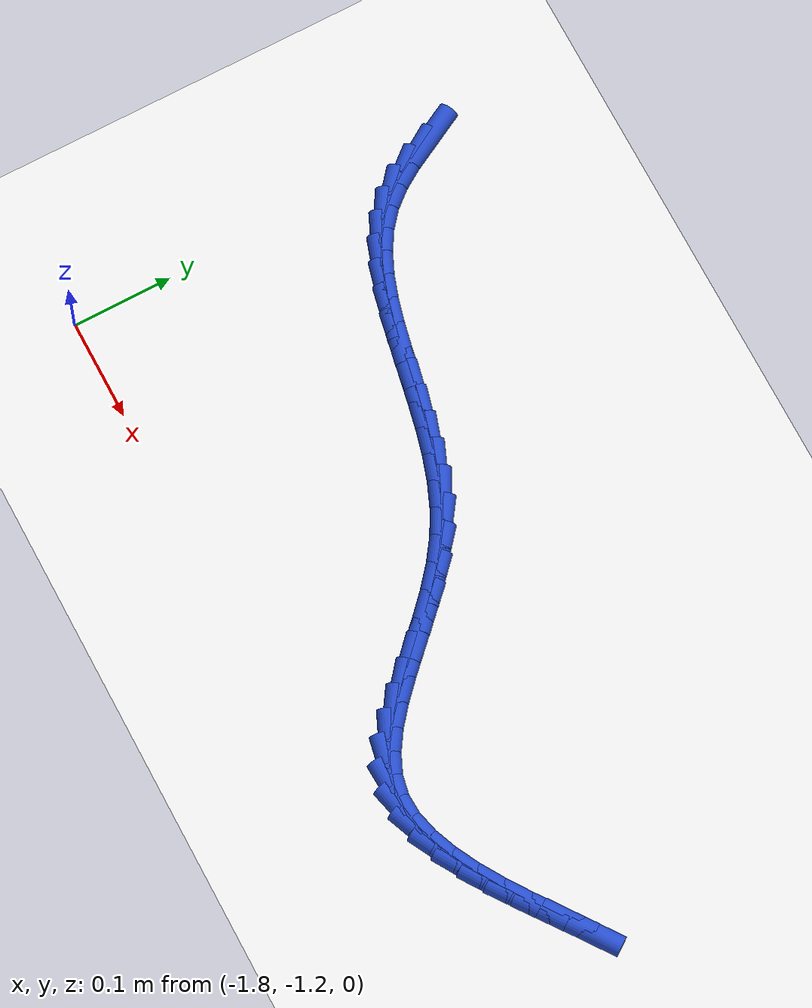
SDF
<sdf version="1.6">
 <world name="default">
  <model name="ground_plane">
   <static>1</static>
   <link name="link">
    <collision name="collision">
     <geometry><plane><normal>0 0 1</normal><size>100 100</size></plane></geometry>
     <surface><friction><ode><mu>100</mu><mu2>50</mu2></ode></friction></surface>
    </collision>
    <visual name="visual">
     <cast_shadows>0</cast_shadows>
     <geometry><plane><normal>0 0 1</normal><size>100 100</size></plane></geometry>
     <material>
      <script><uri>file://media/materials/scripts/gazebo.material</uri><name>Gazebo/WhiteGlow</name></script>
     </material>
    </visual>
   </link>
  </model>
  <model name="line">
   <link name="link_174">
    <pose>-1.8045953094285936 -0.8269042348939845 0.01 0 1.57 -1.0811596735291378</pose>
    <collision name="collision">
     <geometry><cylinder><radius>0.01</radius><length>0.08</length></cylinder></geometry>
    </collision>
    <visual name="visual">
     <material>
      <script><name>Gazebo/Blue</name><uri>file://media/materials/scripts/gazebo.material</uri></script>
     </material>
     <geometry><cylinder><radius>0.01</radius><length>0.08</length></cylinder></geometry>
    </visual>
   </link>
   <link name="link_175">
    <pose>-1.7926468094170425 -0.8493249847190096 0.01 0 1.57 -0.9981048424706145</pose>
    <collision name="collision">
     <geometry><cylinder><radius>0.01</radius><length>0.08</length></cylinder></geometry>
    </collision>
    <visual name="visual">
     <material>
      <script><name>Gazebo/Blue</name><uri>file://media/materials/scripts/gazebo.material</uri></script>
     </material>
     <geometry><cylinder><radius>0.01</radius><length>0.08</length></cylinder></geometry>
    </visual>
   </link>
   <link name="link_176">
    <pose>-1.7793731867060312 -0.8699115097469342 0.01 0 1.57 -0.8629069760477935</pose>
    <collision name="collision">
     <geometry><cylinder><radius>0.01</radius><length>0.08</length></cylinder></geometry>
    </collision>
    <visual name="visual">
     <material>
      <script><name>Gazebo/Blue</name><uri>file://media/materials/scripts/gazebo.material</uri></script>
     </material>
     <geometry><cylinder><radius>0.01</radius><length>0.08</length></cylinder></geometry>
    </visual>
   </link>
   <link name="link_177">
    <pose>-1.7641263873290363 -0.887725993903983 0.01 0 1.57 -0.6944248073078879</pose>
    <collision name="collision">
     <geometry><cylinder><radius>0.01</radius><length>0.08</length></cylinder></geometry>
    </collision>
    <visual name="visual">
     <material>
      <script><name>Gazebo/Blue</name><uri>file://media/materials/scripts/gazebo.material</uri></script>
     </material>
     <geometry><cylinder><radius>0.01</radius><length>0.08</length></cylinder></geometry>
    </visual>
   </link>
   <link name="link_178">
    <pose>-1.7465883410966696 -0.9023317194316595 0.01 0 1.57 -0.5419529914897148</pose>
    <collision name="collision">
     <geometry><cylinder><radius>0.01</radius><length>0.08</length></cylinder></geometry>
    </collision>
    <visual name="visual">
     <material>
      <script><name>Gazebo/Blue</name><uri>file://media/materials/scripts/gazebo.material</uri></script>
     </material>
     <geometry><cylinder><radius>0.01</radius><length>0.08</length></cylinder></geometry>
    </visual>
   </link>
   <link name="link_179">
    <pose>-1.7269928040703453 -0.9141299467502788 0.01 0 1.57 -0.417262885952376</pose>
    <collision name="collision">
     <geometry><cylinder><radius>0.01</radius><length>0.08</length></cylinder></geometry>
    </collision>
    <visual name="visual">
     <material>
      <script><name>Gazebo/Blue</name><uri>file://media/materials/scripts/gazebo.material</uri></script>
     </material>
     <geometry><cylinder><radius>0.01</radius><length>0.08</length></cylinder></geometry>
    </visual>
   </link>
   <link name="link_180">
    <pose>-1.705626052219157 -0.9236016906168247 0.01 0 1.57 -0.3221067414059348</pose>
    <collision name="collision">
     <geometry><cylinder><radius>0.01</radius><length>0.08</length></cylinder></geometry>
    </collision>
    <visual name="visual">
     <material>
      <script><name>Gazebo/Blue</name><uri>file://media/materials/scripts/gazebo.material</uri></script>
     </material>
     <geometry><cylinder><radius>0.01</radius><length>0.08</length></cylinder></geometry>
    </visual>
   </link>
   <link name="link_181">
    <pose>-1.6827743615121953 -0.9312279657882798 0.01 0 1.57 -0.2547080053352946</pose>
    <collision name="collision">
     <geometry><cylinder><radius>0.01</radius><length>0.08</length></cylinder></geometry>
    </collision>
    <visual name="visual">
     <material>
      <script><name>Gazebo/Blue</name><uri>file://media/materials/scripts/gazebo.material</uri></script>
     </material>
     <geometry><cylinder><radius>0.01</radius><length>0.08</length></cylinder></geometry>
    </visual>
   </link>
   <link name="link_182">
    <pose>-1.6587240079185566 -0.9374897870216272 0.01 0 1.57 -0.21221234828041263</pose>
    <collision name="collision">
     <geometry><cylinder><radius>0.01</radius><length>0.08</length></cylinder></geometry>
    </collision>
    <visual name="visual">
     <material>
      <script><name>Gazebo/Blue</name><uri>file://media/materials/scripts/gazebo.material</uri></script>
     </material>
     <geometry><cylinder><radius>0.01</radius><length>0.08</length></cylinder></geometry>
    </visual>
   </link>
   <link name="link_183">
    <pose>-1.6337612674073323 -0.9428681690738505 0.01 0 1.57 -0.19206110719427397</pose>
    <collision name="collision">
     <geometry><cylinder><radius>0.01</radius><length>0.08</length></cylinder></geometry>
    </collision>
    <visual name="visual">
     <material>
      <script><name>Gazebo/Blue</name><uri>file://media/materials/scripts/gazebo.material</uri></script>
     </material>
     <geometry><cylinder><radius>0.01</radius><length>0.08</length></cylinder></geometry>
    </visual>
   </link>
   <link name="link_184">
    <pose>-1.608172415947616 -0.9478441267019327 0.01 0 1.57 -0.19252583983886548</pose>
    <collision name="collision">
     <geometry><cylinder><radius>0.01</radius><length>0.08</length></cylinder></geometry>
    </collision>
    <visual name="visual">
     <material>
      <script><name>Gazebo/Blue</name><uri>file://media/materials/scripts/gazebo.material</uri></script>
     </material>
     <geometry><cylinder><radius>0.01</radius><length>0.08</length></cylinder></geometry>
    </visual>
   </link>
   <link name="link_185">
    <pose>-1.5822437295085003 -0.9528986746628565 0.01 0 1.57 -0.21280488386489677</pose>
    <collision name="collision">
     <geometry><cylinder><radius>0.01</radius><length>0.08</length></cylinder></geometry>
    </collision>
    <visual name="visual">
     <material>
      <script><name>Gazebo/Blue</name><uri>file://media/materials/scripts/gazebo.material</uri></script>
     </material>
     <geometry><cylinder><radius>0.01</radius><length>0.08</length></cylinder></geometry>
    </visual>
   </link>
   <link name="link_186">
    <pose>-1.5562614840590787 -0.9585128277136057 0.01 0 1.57 -0.25290864013942377</pose>
    <collision name="collision">
     <geometry><cylinder><radius>0.01</radius><length>0.08</length></cylinder></geometry>
    </collision>
    <visual name="visual">
     <material>
      <script><name>Gazebo/Blue</name><uri>file://media/materials/scripts/gazebo.material</uri></script>
     </material>
     <geometry><cylinder><radius>0.01</radius><length>0.08</length></cylinder></geometry>
    </visual>
   </link>
   <link name="link_187">
    <pose>-1.5305119555684439 -0.9651676006111631 0.01 0 1.57 -0.3133886452733397</pose>
    <collision name="collision">
     <geometry><cylinder><radius>0.01</radius><length>0.08</length></cylinder></geometry>
    </collision>
    <visual name="visual">
     <material>
      <script><name>Gazebo/Blue</name><uri>file://media/materials/scripts/gazebo.material</uri></script>
     </material>
     <geometry><cylinder><radius>0.01</radius><length>0.08</length></cylinder></geometry>
    </visual>
   </link>
   <link name="link_188">
    <pose>-1.5052814200056894 -0.9733440081125121 0.01 0 1.57 -0.39485608805735917</pose>
    <collision name="collision">
     <geometry><cylinder><radius>0.01</radius><length>0.08</length></cylinder></geometry>
    </collision>
    <visual name="visual">
     <material>
      <script><name>Gazebo/Blue</name><uri>file://media/materials/scripts/gazebo.material</uri></script>
     </material>
     <geometry><cylinder><radius>0.01</radius><length>0.08</length></cylinder></geometry>
    </visual>
   </link>
   <link name="link_189">
    <pose>-1.480856153339908 -0.9835230649746354 0.01 0 1.57 -0.49720511703170606</pose>
    <collision name="collision">
     <geometry><cylinder><radius>0.01</radius><length>0.08</length></cylinder></geometry>
    </collision>
    <visual name="visual">
     <material>
      <script><name>Gazebo/Blue</name><uri>file://media/materials/scripts/gazebo.material</uri></script>
     </material>
     <geometry><cylinder><radius>0.01</radius><length>0.08</length></cylinder></geometry>
    </visual>
   </link>
   <link name="link_190">
    <pose>-1.4575224315401927 -0.9961857859545172 0.01 0 1.57 -0.6108288077534586</pose>
    <collision name="collision">
     <geometry><cylinder><radius>0.01</radius><length>0.08</length></cylinder></geometry>
    </collision>
    <visual name="visual">
     <material>
      <script><name>Gazebo/Blue</name><uri>file://media/materials/scripts/gazebo.material</uri></script>
     </material>
     <geometry><cylinder><radius>0.01</radius><length>0.08</length></cylinder></geometry>
    </visual>
   </link>
   <link name="link_191">
    <pose>-1.435485573078299 -1.011614963974519 0.01 0 1.57 -0.6997801750904464</pose>
    <collision name="collision">
     <geometry><cylinder><radius>0.01</radius><length>0.08</length></cylinder></geometry>
    </collision>
    <visual name="visual">
     <material>
      <script><name>Gazebo/Blue</name><uri>file://media/materials/scripts/gazebo.material</uri></script>
     </material>
     <geometry><cylinder><radius>0.01</radius><length>0.08</length></cylinder></geometry>
    </visual>
   </link>
   <link name="link_192">
    <pose>-1.414589228984781 -1.0292078608317399 0.01 0 1.57 -0.7569769981927131</pose>
    <collision name="collision">
     <geometry><cylinder><radius>0.01</radius><length>0.08</length></cylinder></geometry>
    </collision>
    <visual name="visual">
     <material>
      <script><name>Gazebo/Blue</name><uri>file://media/materials/scripts/gazebo.material</uri></script>
     </material>
     <geometry><cylinder><radius>0.01</radius><length>0.08</length></cylinder></geometry>
    </visual>
   </link>
   <link name="link_193">
    <pose>-1.3945760942994903 -1.0481145508193257 0.01 0 1.57 -0.784967581385494</pose>
    <collision name="collision">
     <geometry><cylinder><radius>0.01</radius><length>0.08</length></cylinder></geometry>
    </collision>
    <visual name="visual">
     <material>
      <script><name>Gazebo/Blue</name><uri>file://media/materials/scripts/gazebo.material</uri></script>
     </material>
     <geometry><cylinder><radius>0.01</radius><length>0.08</length></cylinder></geometry>
    </visual>
   </link>
   <link name="link_194">
    <pose>-1.3751888595448276 -1.06748509716959 0.01 0 1.57 -0.7844988068199918</pose>
    <collision name="collision">
     <geometry><cylinder><radius>0.01</radius><length>0.08</length></cylinder></geometry>
    </collision>
    <visual name="visual">
     <material>
      <script><name>Gazebo/Blue</name><uri>file://media/materials/scripts/gazebo.material</uri></script>
     </material>
     <geometry><cylinder><radius>0.01</radius><length>0.08</length></cylinder></geometry>
    </visual>
   </link>
   <link name="link_195">
    <pose>-1.3561702152431927 -1.0864695631148455 0.01 0 1.57 -0.753792571364336</pose>
    <collision name="collision">
     <geometry><cylinder><radius>0.01</radius><length>0.08</length></cylinder></geometry>
    </collision>
    <visual name="visual">
     <material>
      <script><name>Gazebo/Blue</name><uri>file://media/materials/scripts/gazebo.material</uri></script>
     </material>
     <geometry><cylinder><radius>0.01</radius><length>0.08</length></cylinder></geometry>
    </visual>
   </link>
   <link name="link_196">
    <pose>-1.3372628519169858 -1.1042180118874054 0.01 0 1.57 -0.6880313674675</pose>
    <collision name="collision">
     <geometry><cylinder><radius>0.01</radius><length>0.08</length></cylinder></geometry>
    </collision>
    <visual name="visual">
     <material>
      <script><name>Gazebo/Blue</name><uri>file://media/materials/scripts/gazebo.material</uri></script>
     </material>
     <geometry><cylinder><radius>0.01</radius><length>0.08</length></cylinder></geometry>
    </visual>
   </link>
   <link name="link_197">
    <pose>-1.3182094600886072 -1.1198805067195825 0.01 0 1.57 -0.5792505303545347</pose>
    <collision name="collision">
     <geometry><cylinder><radius>0.01</radius><length>0.08</length></cylinder></geometry>
    </collision>
    <visual name="visual">
     <material>
      <script><name>Gazebo/Blue</name><uri>file://media/materials/scripts/gazebo.material</uri></script>
     </material>
     <geometry><cylinder><radius>0.01</radius><length>0.08</length></cylinder></geometry>
    </visual>
   </link>
   <link name="link_198">
    <pose>-1.2987527302804573 -1.1326071108436897 0.01 0 1.57 -0.41821271057397297</pose>
    <collision name="collision">
     <geometry><cylinder><radius>0.01</radius><length>0.08</length></cylinder></geometry>
    </collision>
    <visual name="visual">
     <material>
      <script><name>Gazebo/Blue</name><uri>file://media/materials/scripts/gazebo.material</uri></script>
     </material>
     <geometry><cylinder><radius>0.01</radius><length>0.08</length></cylinder></geometry>
    </visual>
   </link>
   <link name="link_199">
    <pose>-1.2786353530149355 -1.1415478874920402 0.01 0 1.57 -0.20186867848040096</pose>
    <collision name="collision">
     <geometry><cylinder><radius>0.01</radius><length>0.08</length></cylinder></geometry>
    </collision>
    <visual name="visual">
     <material>
      <script><name>Gazebo/Blue</name><uri>file://media/materials/scripts/gazebo.material</uri></script>
     </material>
     <geometry><cylinder><radius>0.01</radius><length>0.08</length></cylinder></geometry>
    </visual>
   </link>
   <link name="link_200">
    <pose>-1.2576000188144438 -1.1458528998969468 0.01 0 1.57 0.04266503960337274</pose>
    <collision name="collision">
     <geometry><cylinder><radius>0.01</radius><length>0.08</length></cylinder></geometry>
    </collision>
    <visual name="visual">
     <material>
      <script><name>Gazebo/Blue</name><uri>file://media/materials/scripts/gazebo.material</uri></script>
     </material>
     <geometry><cylinder><radius>0.01</radius><length>0.08</length></cylinder></geometry>
    </visual>
   </link>
   <link name="link_201">
    <pose>-1.2354750248352513 -1.14490836296775 0.01 0 1.57 0.24124943768289894</pose>
    <collision name="collision">
     <geometry><cylinder><radius>0.01</radius><length>0.08</length></cylinder></geometry>
    </collision>
    <visual name="visual">
     <material>
      <script><name>Gazebo/Blue</name><uri>file://media/materials/scripts/gazebo.material</uri></script>
     </material>
     <geometry><cylinder><radius>0.01</radius><length>0.08</length></cylinder></geometry>
    </visual>
   </link>
   <link name="link_202">
    <pose>-1.2125081106912643 -1.1392575519408807 0.01 0 1.57 0.3836980235483733</pose>
    <collision name="collision">
     <geometry><cylinder><radius>0.01</radius><length>0.08</length></cylinder></geometry>
    </collision>
    <visual name="visual">
     <material>
      <script><name>Gazebo/Blue</name><uri>file://media/materials/scripts/gazebo.material</uri></script>
     </material>
     <geometry><cylinder><radius>0.01</radius><length>0.08</length></cylinder></geometry>
    </visual>
   </link>
   <link name="link_203">
    <pose>-1.1890752740152695 -1.1297975504538484 0.01 0 1.57 0.484199420566747</pose>
    <collision name="collision">
     <geometry><cylinder><radius>0.01</radius><length>0.08</length></cylinder></geometry>
    </collision>
    <visual name="visual">
     <material>
      <script><name>Gazebo/Blue</name><uri>file://media/materials/scripts/gazebo.material</uri></script>
     </material>
     <geometry><cylinder><radius>0.01</radius><length>0.08</length></cylinder></geometry>
    </visual>
   </link>
   <link name="link_204">
    <pose>-1.1655525448256665 -1.1174255314820591 0.01 0 1.57 0.5543792611940637</pose>
    <collision name="collision">
     <geometry><cylinder><radius>0.01</radius><length>0.08</length></cylinder></geometry>
    </collision>
    <visual name="visual">
     <material>
      <script><name>Gazebo/Blue</name><uri>file://media/materials/scripts/gazebo.material</uri></script>
     </material>
     <geometry><cylinder><radius>0.01</radius><length>0.08</length></cylinder></geometry>
    </visual>
   </link>
   <link name="link_205">
    <pose>-1.1423159531408558 -1.1030386680009179 0.01 0 1.57 0.6018163389230892</pose>
    <collision name="collision">
     <geometry><cylinder><radius>0.01</radius><length>0.08</length></cylinder></geometry>
    </collision>
    <visual name="visual">
     <material>
      <script><name>Gazebo/Blue</name><uri>file://media/materials/scripts/gazebo.material</uri></script>
     </material>
     <geometry><cylinder><radius>0.01</radius><length>0.08</length></cylinder></geometry>
    </visual>
   </link>
   <link name="link_206">
    <pose>-1.1197381556639345 -1.0875320878435035 0.01 0 1.57 0.6297647693997497</pose>
    <collision name="collision">
     <geometry><cylinder><radius>0.01</radius><length>0.08</length></cylinder></geometry>
    </collision>
    <visual name="visual">
     <material>
      <script><name>Gazebo/Blue</name><uri>file://media/materials/scripts/gazebo.material</uri></script>
     </material>
     <geometry><cylinder><radius>0.01</radius><length>0.08</length></cylinder></geometry>
    </visual>
   </link>
   <link name="link_207">
    <pose>-1.0979536406727677 -1.0716565242981737 0.01 0 1.57 0.6372980239335281</pose>
    <collision name="collision">
     <geometry><cylinder><radius>0.01</radius><length>0.08</length></cylinder></geometry>
    </collision>
    <visual name="visual">
     <material>
      <script><name>Gazebo/Blue</name><uri>file://media/materials/scripts/gazebo.material</uri></script>
     </material>
     <geometry><cylinder><radius>0.01</radius><length>0.08</length></cylinder></geometry>
    </visual>
   </link>
   <link name="link_208">
    <pose>-1.0767055516998445 -1.055925449789328 0.01 0 1.57 0.6231332724423826</pose>
    <collision name="collision">
     <geometry><cylinder><radius>0.01</radius><length>0.08</length></cylinder></geometry>
    </collision>
    <visual name="visual">
     <material>
      <script><name>Gazebo/Blue</name><uri>file://media/materials/scripts/gazebo.material</uri></script>
     </material>
     <geometry><cylinder><radius>0.01</radius><length>0.08</length></cylinder></geometry>
    </visual>
   </link>
  </model>
 </world>
</sdf>
